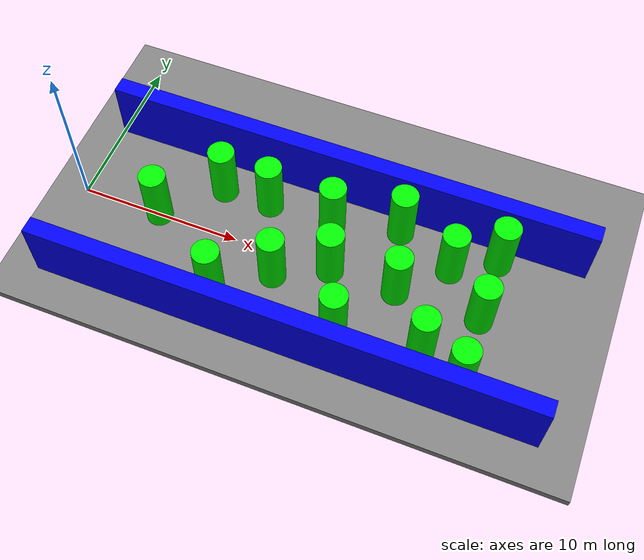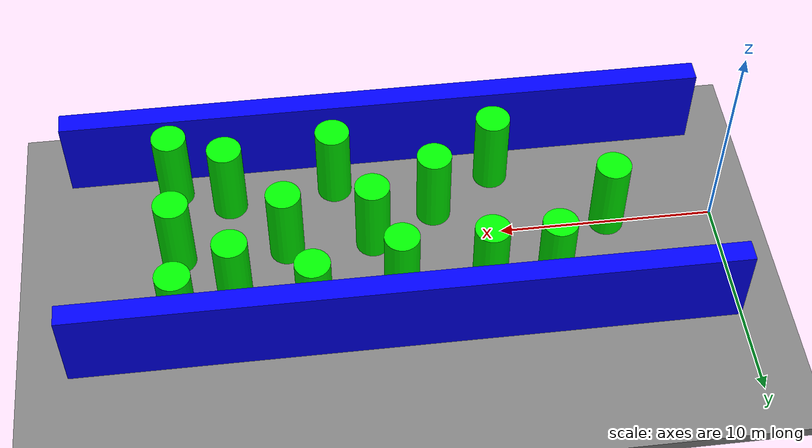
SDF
<?xml version="1.0"?>
<sdf version="1.8">
  <world name="Chamber1">
    <scene>
      <ambient>1.0 1.0 1.0 1.0</ambient>
      <background>0.5 0.5 0.5 1.0</background>
      <sky>
        <time>10.0</time>
        <sunrise>6.0</sunrise>
        <sunset>18.0</sunset>
      </sky>
      <shadows>True</shadows>
      <grid>True</grid>
      <origin_visual>True</origin_visual>
    </scene>
    <light name="Sun" type="directional">
      <diffuse>0.7 0.7 0.7 0.0</diffuse>
      <specular>1.0 1.0 1.0 0.0</specular>
      <direction>-1.0 -1.0 -1.0</direction>
      <cast_shadows>False</cast_shadows>
    </light>
    <model name="ground">
      <static>True</static>
      <link name="ground">
        <pose>0 0 -0.25 0.0 0.0 0.0</pose>
        <inertial>
          <mass>1.0</mass>
          <inertia>
            <ixx>1.0</ixx>
            <iyy>1.0</iyy>
            <izz>1.0</izz>
            <ixy>0.0</ixy>
            <ixz>0.0</ixz>
            <iyz>0.0</iyz>
          </inertia>
        </inertial>
        <collision name="visual">
          <geometry>
            <box>
              <size>100.0 100.0 0.5</size>
            </box>
          </geometry>
        </collision>
        <visual name="visual">
          <geometry>
            <box>
              <size>100.0 100.0 0.5</size>
            </box>
          </geometry>
          <material>
            <ambient>0.5 0.5 0.5 1.0</ambient>
            <diffuse>0.5 0.5 0.5 1.0</diffuse>
            <specular>0 0 0 0</specular>
            <emissive>0 0 0 1</emissive>
          </material>
        </visual>
      </link>
    </model>
    <model name="Box 1">
      <static>True</static>
      <link name="Box 1">
        <pose>15.0 -5.5 2.0 0.0 0.0 0.0</pose>
        <inertial>
          <mass>1.0</mass>
          <inertia>
            <ixx>1.0</ixx>
            <iyy>1.0</iyy>
            <izz>1.0</izz>
            <ixy>0.0</ixy>
            <ixz>0.0</ixz>
            <iyz>0.0</iyz>
          </inertia>
        </inertial>
        <collision name="visual">
          <geometry>
            <box>
              <size>30.0 1.0 4.0</size>
            </box>
          </geometry>
        </collision>
        <visual name="visual">
          <geometry>
            <box>
              <size>30.0 1.0 4.0</size>
            </box>
          </geometry>
          <material>
            <ambient>0.0 0.0 1.0 1.0</ambient>
            <diffuse>0.0 0.0 1.0 1.0</diffuse>
            <specular>0 0 0 0</specular>
            <emissive>0 0 0 1</emissive>
          </material>
        </visual>
      </link>
    </model>
    <model name="Box 2">
      <static>True</static>
      <link name="Box 2">
        <pose>15.0 5.5 2.0 0.0 0.0 0.0</pose>
        <inertial>
          <mass>1.0</mass>
          <inertia>
            <ixx>1.0</ixx>
            <iyy>1.0</iyy>
            <izz>1.0</izz>
            <ixy>0.0</ixy>
            <ixz>0.0</ixz>
            <iyz>0.0</iyz>
          </inertia>
        </inertial>
        <collision name="visual">
          <geometry>
            <box>
              <size>30.0 1.0 4.0</size>
            </box>
          </geometry>
        </collision>
        <visual name="visual">
          <geometry>
            <box>
              <size>30.0 1.0 4.0</size>
            </box>
          </geometry>
          <material>
            <ambient>0.0 0.0 1.0 1.0</ambient>
            <diffuse>0.0 0.0 1.0 1.0</diffuse>
            <specular>0 0 0 0</specular>
            <emissive>0 0 0 1</emissive>
          </material>
        </visual>
      </link>
    </model>
    <model name="Cylinder_1">
      <static>True</static>
      <link name="Cylinder_1">
        <pose>5.0 0.0 2.0 0.0 0.0 0.0</pose>
        <inertial>
          <mass>1.0</mass>
          <inertia>
            <ixx>1.0</ixx>
            <iyy>1.0</iyy>
            <izz>1.0</izz>
            <ixy>0.0</ixy>
            <ixz>0.0</ixz>
            <iyz>0.0</iyz>
          </inertia>
        </inertial>
        <collision name="visual">
          <geometry>
            <cylinder>
              <radius>0.8</radius>
              <length>4.0</length>
            </cylinder>
          </geometry>
        </collision>
        <visual name="visual">
          <geometry>
            <cylinder>
              <radius>0.8</radius>
              <length>4.0</length>
            </cylinder>
          </geometry>
          <material>
            <ambient>0.0 1.0 0.0 1.0</ambient>
            <diffuse>0.0 1.0 0.0 1.0</diffuse>
            <specular>0 0 0 0</specular>
            <emissive>0 0 0 1</emissive>
          </material>
        </visual>
      </link>
    </model>
    <model name="Cylinder_2">
      <static>True</static>
      <link name="Cylinder_2">
        <pose>8.0 3.0 2.0 0.0 0.0 0.0</pose>
        <inertial>
          <mass>1.0</mass>
          <inertia>
            <ixx>1.0</ixx>
            <iyy>1.0</iyy>
            <izz>1.0</izz>
            <ixy>0.0</ixy>
            <ixz>0.0</ixz>
            <iyz>0.0</iyz>
          </inertia>
        </inertial>
        <collision name="visual">
          <geometry>
            <cylinder>
              <radius>0.8</radius>
              <length>4.0</length>
            </cylinder>
          </geometry>
        </collision>
        <visual name="visual">
          <geometry>
            <cylinder>
              <radius>0.8</radius>
              <length>4.0</length>
            </cylinder>
          </geometry>
          <material>
            <ambient>0.0 1.0 0.0 1.0</ambient>
            <diffuse>0.0 1.0 0.0 1.0</diffuse>
            <specular>0 0 0 0</specular>
            <emissive>0 0 0 1</emissive>
          </material>
        </visual>
      </link>
    </model>
    <model name="Cylinder_3">
      <static>True</static>
      <link name="Cylinder_3">
        <pose>10.0 -3.5 2.0 0.0 0.0 0.0</pose>
        <inertial>
          <mass>1.0</mass>
          <inertia>
            <ixx>1.0</ixx>
            <iyy>1.0</iyy>
            <izz>1.0</izz>
            <ixy>0.0</ixy>
            <ixz>0.0</ixz>
            <iyz>0.0</iyz>
          </inertia>
        </inertial>
        <collision name="visual">
          <geometry>
            <cylinder>
              <radius>0.8</radius>
              <length>4.0</length>
            </cylinder>
          </geometry>
        </collision>
        <visual name="visual">
          <geometry>
            <cylinder>
              <radius>0.8</radius>
              <length>4.0</length>
            </cylinder>
          </geometry>
          <material>
            <ambient>0.0 1.0 0.0 1.0</ambient>
            <diffuse>0.0 1.0 0.0 1.0</diffuse>
            <specular>0 0 0 0</specular>
            <emissive>0 0 0 1</emissive>
          </material>
        </visual>
      </link>
    </model>
    <model name="Cylinder_4">
      <static>True</static>
      <link name="Cylinder_4">
        <pose>11.0 3.0 2.0 0.0 0.0 0.0</pose>
        <inertial>
          <mass>1.0</mass>
          <inertia>
            <ixx>1.0</ixx>
            <iyy>1.0</iyy>
            <izz>1.0</izz>
            <ixy>0.0</ixy>
            <ixz>0.0</ixz>
            <iyz>0.0</iyz>
          </inertia>
        </inertial>
        <collision name="visual">
          <geometry>
            <cylinder>
              <radius>0.8</radius>
              <length>4.0</length>
            </cylinder>
          </geometry>
        </collision>
        <visual name="visual">
          <geometry>
            <cylinder>
              <radius>0.8</radius>
              <length>4.0</length>
            </cylinder>
          </geometry>
          <material>
            <ambient>0.0 1.0 0.0 1.0</ambient>
            <diffuse>0.0 1.0 0.0 1.0</diffuse>
            <specular>0 0 0 0</specular>
            <emissive>0 0 0 1</emissive>
          </material>
        </visual>
      </link>
    </model>
    <model name="Cylinder_5">
      <static>True</static>
      <link name="Cylinder_5">
        <pose>13.0 -1.5 2.0 0.0 0.0 0.0</pose>
        <inertial>
          <mass>1.0</mass>
          <inertia>
            <ixx>1.0</ixx>
            <iyy>1.0</iyy>
            <izz>1.0</izz>
            <ixy>0.0</ixy>
            <ixz>0.0</ixz>
            <iyz>0.0</iyz>
          </inertia>
        </inertial>
        <collision name="visual">
          <geometry>
            <cylinder>
              <radius>0.8</radius>
              <length>4.0</length>
            </cylinder>
          </geometry>
        </collision>
        <visual name="visual">
          <geometry>
            <cylinder>
              <radius>0.8</radius>
              <length>4.0</length>
            </cylinder>
          </geometry>
          <material>
            <ambient>0.0 1.0 0.0 1.0</ambient>
            <diffuse>0.0 1.0 0.0 1.0</diffuse>
            <specular>0 0 0 0</specular>
            <emissive>0 0 0 1</emissive>
          </material>
        </visual>
      </link>
    </model>
    <model name="Cylinder_6">
      <static>True</static>
      <link name="Cylinder_6">
        <pose>15.0 3.0 2.0 0.0 0.0 0.0</pose>
        <inertial>
          <mass>1.0</mass>
          <inertia>
            <ixx>1.0</ixx>
            <iyy>1.0</iyy>
            <izz>1.0</izz>
            <ixy>0.0</ixy>
            <ixz>0.0</ixz>
            <iyz>0.0</iyz>
          </inertia>
        </inertial>
        <collision name="visual">
          <geometry>
            <cylinder>
              <radius>0.8</radius>
              <length>4.0</length>
            </cylinder>
          </geometry>
        </collision>
        <visual name="visual">
          <geometry>
            <cylinder>
              <radius>0.8</radius>
              <length>4.0</length>
            </cylinder>
          </geometry>
          <material>
            <ambient>0.0 1.0 0.0 1.0</ambient>
            <diffuse>0.0 1.0 0.0 1.0</diffuse>
            <specular>0 0 0 0</specular>
            <emissive>0 0 0 1</emissive>
          </material>
        </visual>
      </link>
    </model>
    <model name="Cylinder_7">
      <static>True</static>
      <link name="Cylinder_7">
        <pose>16.0 0.0 2.0 0.0 0.0 0.0</pose>
        <inertial>
          <mass>1.0</mass>
          <inertia>
            <ixx>1.0</ixx>
            <iyy>1.0</iyy>
            <izz>1.0</izz>
            <ixy>0.0</ixy>
            <ixz>0.0</ixz>
            <iyz>0.0</iyz>
          </inertia>
        </inertial>
        <collision name="visual">
          <geometry>
            <cylinder>
              <radius>0.8</radius>
              <length>4.0</length>
            </cylinder>
          </geometry>
        </collision>
        <visual name="visual">
          <geometry>
            <cylinder>
              <radius>0.8</radius>
              <length>4.0</length>
            </cylinder>
          </geometry>
          <material>
            <ambient>0.0 1.0 0.0 1.0</ambient>
            <diffuse>0.0 1.0 0.0 1.0</diffuse>
            <specular>0 0 0 0</specular>
            <emissive>0 0 0 1</emissive>
          </material>
        </visual>
      </link>
    </model>
    <model name="Cylinder_8">
      <static>True</static>
      <link name="Cylinder_8">
        <pose>17.5 -3.5 2.0 0.0 0.0 0.0</pose>
        <inertial>
          <mass>1.0</mass>
          <inertia>
            <ixx>1.0</ixx>
            <iyy>1.0</iyy>
            <izz>1.0</izz>
            <ixy>0.0</ixy>
            <ixz>0.0</ixz>
            <iyz>0.0</iyz>
          </inertia>
        </inertial>
        <collision name="visual">
          <geometry>
            <cylinder>
              <radius>0.8</radius>
              <length>4.0</length>
            </cylinder>
          </geometry>
        </collision>
        <visual name="visual">
          <geometry>
            <cylinder>
              <radius>0.8</radius>
              <length>4.0</length>
            </cylinder>
          </geometry>
          <material>
            <ambient>0.0 1.0 0.0 1.0</ambient>
            <diffuse>0.0 1.0 0.0 1.0</diffuse>
            <specular>0 0 0 0</specular>
            <emissive>0 0 0 1</emissive>
          </material>
        </visual>
      </link>
    </model>
    <model name="Cylinder_9">
      <static>True</static>
      <link name="Cylinder_9">
        <pose>19.0 4.0 2.0 0.0 0.0 0.0</pose>
        <inertial>
          <mass>1.0</mass>
          <inertia>
            <ixx>1.0</ixx>
            <iyy>1.0</iyy>
            <izz>1.0</izz>
            <ixy>0.0</ixy>
            <ixz>0.0</ixz>
            <iyz>0.0</iyz>
          </inertia>
        </inertial>
        <collision name="visual">
          <geometry>
            <cylinder>
              <radius>0.8</radius>
              <length>4.0</length>
            </cylinder>
          </geometry>
        </collision>
        <visual name="visual">
          <geometry>
            <cylinder>
              <radius>0.8</radius>
              <length>4.0</length>
            </cylinder>
          </geometry>
          <material>
            <ambient>0.0 1.0 0.0 1.0</ambient>
            <diffuse>0.0 1.0 0.0 1.0</diffuse>
            <specular>0 0 0 0</specular>
            <emissive>0 0 0 1</emissive>
          </material>
        </visual>
      </link>
    </model>
    <model name="Cylinder_10">
      <static>True</static>
      <link name="Cylinder_10">
        <pose>20.0 0.0 2.0 0.0 0.0 0.0</pose>
        <inertial>
          <mass>1.0</mass>
          <inertia>
            <ixx>1.0</ixx>
            <iyy>1.0</iyy>
            <izz>1.0</izz>
            <ixy>0.0</ixy>
            <ixz>0.0</ixz>
            <iyz>0.0</iyz>
          </inertia>
        </inertial>
        <collision name="visual">
          <geometry>
            <cylinder>
              <radius>0.8</radius>
              <length>4.0</length>
            </cylinder>
          </geometry>
        </collision>
        <visual name="visual">
          <geometry>
            <cylinder>
              <radius>0.8</radius>
              <length>4.0</length>
            </cylinder>
          </geometry>
          <material>
            <ambient>0.0 1.0 0.0 1.0</ambient>
            <diffuse>0.0 1.0 0.0 1.0</diffuse>
            <specular>0 0 0 0</specular>
            <emissive>0 0 0 1</emissive>
          </material>
        </visual>
      </link>
    </model>
    <model name="Cylinder_11">
      <static>True</static>
      <link name="Cylinder_11">
        <pose>22.5 2.5 2.0 0.0 0.0 0.0</pose>
        <inertial>
          <mass>1.0</mass>
          <inertia>
            <ixx>1.0</ixx>
            <iyy>1.0</iyy>
            <izz>1.0</izz>
            <ixy>0.0</ixy>
            <ixz>0.0</ixz>
            <iyz>0.0</iyz>
          </inertia>
        </inertial>
        <collision name="visual">
          <geometry>
            <cylinder>
              <radius>0.8</radius>
              <length>4.0</length>
            </cylinder>
          </geometry>
        </collision>
        <visual name="visual">
          <geometry>
            <cylinder>
              <radius>0.8</radius>
              <length>4.0</length>
            </cylinder>
          </geometry>
          <material>
            <ambient>0.0 1.0 0.0 1.0</ambient>
            <diffuse>0.0 1.0 0.0 1.0</diffuse>
            <specular>0 0 0 0</specular>
            <emissive>0 0 0 1</emissive>
          </material>
        </visual>
      </link>
    </model>
    <model name="Cylinder_12">
      <static>True</static>
      <link name="Cylinder_12">
        <pose>22.5 -3.0 2.0 0.0 0.0 0.0</pose>
        <inertial>
          <mass>1.0</mass>
          <inertia>
            <ixx>1.0</ixx>
            <iyy>1.0</iyy>
            <izz>1.0</izz>
            <ixy>0.0</ixy>
            <ixz>0.0</ixz>
            <iyz>0.0</iyz>
          </inertia>
        </inertial>
        <collision name="visual">
          <geometry>
            <cylinder>
              <radius>0.8</radius>
              <length>4.0</length>
            </cylinder>
          </geometry>
        </collision>
        <visual name="visual">
          <geometry>
            <cylinder>
              <radius>0.8</radius>
              <length>4.0</length>
            </cylinder>
          </geometry>
          <material>
            <ambient>0.0 1.0 0.0 1.0</ambient>
            <diffuse>0.0 1.0 0.0 1.0</diffuse>
            <specular>0 0 0 0</specular>
            <emissive>0 0 0 1</emissive>
          </material>
        </visual>
      </link>
    </model>
    <model name="Cylinder_13">
      <static>True</static>
      <link name="Cylinder_13">
        <pose>25.0 4.0 2.0 0.0 0.0 0.0</pose>
        <inertial>
          <mass>1.0</mass>
          <inertia>
            <ixx>1.0</ixx>
            <iyy>1.0</iyy>
            <izz>1.0</izz>
            <ixy>0.0</ixy>
            <ixz>0.0</ixz>
            <iyz>0.0</iyz>
          </inertia>
        </inertial>
        <collision name="visual">
          <geometry>
            <cylinder>
              <radius>0.8</radius>
              <length>4.0</length>
            </cylinder>
          </geometry>
        </collision>
        <visual name="visual">
          <geometry>
            <cylinder>
              <radius>0.8</radius>
              <length>4.0</length>
            </cylinder>
          </geometry>
          <material>
            <ambient>0.0 1.0 0.0 1.0</ambient>
            <diffuse>0.0 1.0 0.0 1.0</diffuse>
            <specular>0 0 0 0</specular>
            <emissive>0 0 0 1</emissive>
          </material>
        </visual>
      </link>
    </model>
    <model name="Cylinder_14">
      <static>True</static>
      <link name="Cylinder_14">
        <pose>25.0 0.0 2.0 0.0 0.0 0.0</pose>
        <inertial>
          <mass>1.0</mass>
          <inertia>
            <ixx>1.0</ixx>
            <iyy>1.0</iyy>
            <izz>1.0</izz>
            <ixy>0.0</ixy>
            <ixz>0.0</ixz>
            <iyz>0.0</iyz>
          </inertia>
        </inertial>
        <collision name="visual">
          <geometry>
            <cylinder>
              <radius>0.8</radius>
              <length>4.0</length>
            </cylinder>
          </geometry>
        </collision>
        <visual name="visual">
          <geometry>
            <cylinder>
              <radius>0.8</radius>
              <length>4.0</length>
            </cylinder>
          </geometry>
          <material>
            <ambient>0.0 1.0 0.0 1.0</ambient>
            <diffuse>0.0 1.0 0.0 1.0</diffuse>
            <specular>0 0 0 0</specular>
            <emissive>0 0 0 1</emissive>
          </material>
        </visual>
      </link>
    </model>
    <model name="Cylinder_15">
      <static>True</static>
      <link name="Cylinder_15">
        <pose>25.0 -4.0 2.0 0.0 0.0 0.0</pose>
        <inertial>
          <mass>1.0</mass>
          <inertia>
            <ixx>1.0</ixx>
            <iyy>1.0</iyy>
            <izz>1.0</izz>
            <ixy>0.0</ixy>
            <ixz>0.0</ixz>
            <iyz>0.0</iyz>
          </inertia>
        </inertial>
        <collision name="visual">
          <geometry>
            <cylinder>
              <radius>0.8</radius>
              <length>4.0</length>
            </cylinder>
          </geometry>
        </collision>
        <visual name="visual">
          <geometry>
            <cylinder>
              <radius>0.8</radius>
              <length>4.0</length>
            </cylinder>
          </geometry>
          <material>
            <ambient>0.0 1.0 0.0 1.0</ambient>
            <diffuse>0.0 1.0 0.0 1.0</diffuse>
            <specular>0 0 0 0</specular>
            <emissive>0 0 0 1</emissive>
          </material>
        </visual>
      </link>
    </model>
  </world>
</sdf>
